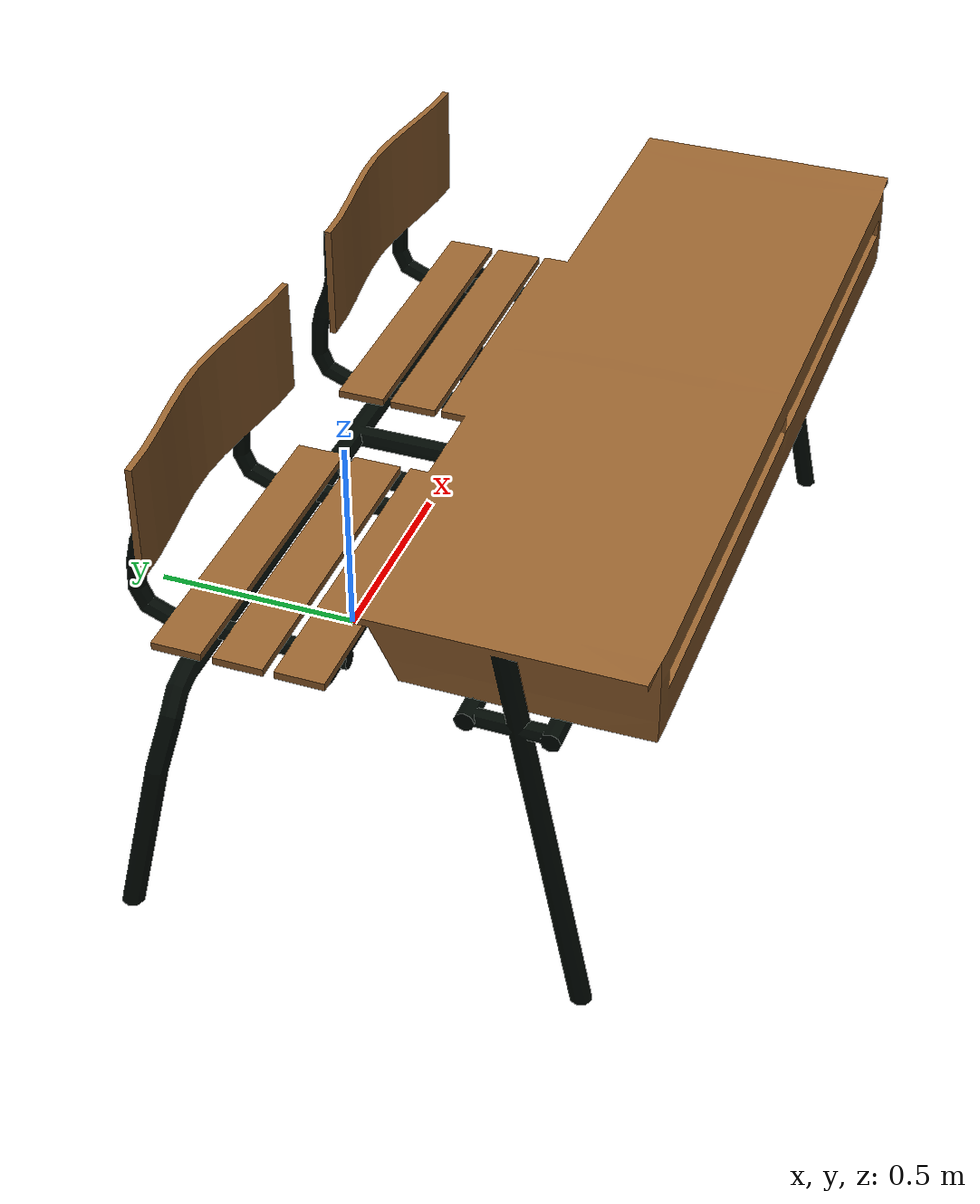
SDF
<?xml version="1.0" ?>
<sdf version="1.6">
  <model name="classroom_table">
    <static>true</static>
    <link name="link">
      <collision name="collision">
        <geometry>
          <mesh>
            <uri>model://classroom_table/meshes/classroom_table.dae</uri>
          </mesh>
        </geometry>
      </collision>
      <visual name="visual">
        <geometry>
          <mesh>
            <uri>model://classroom_table/meshes/classroom_table.dae</uri>
          </mesh>
        </geometry>
      </visual>
    </link>
  </model>
</sdf>
